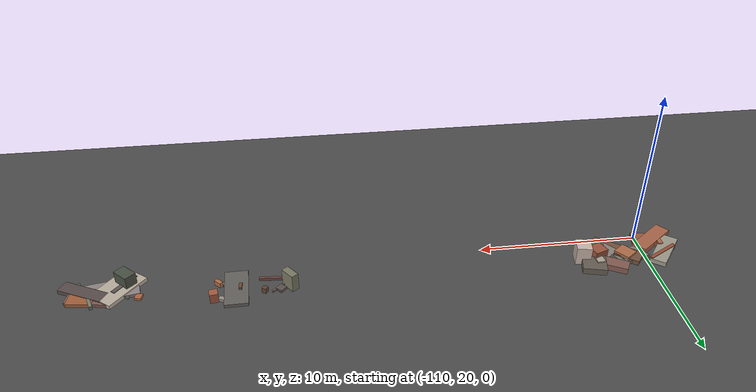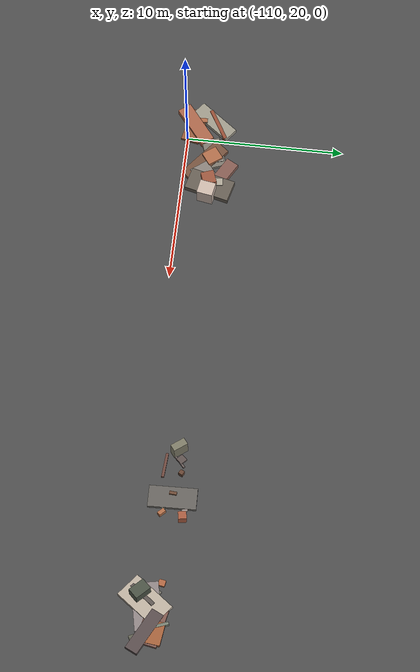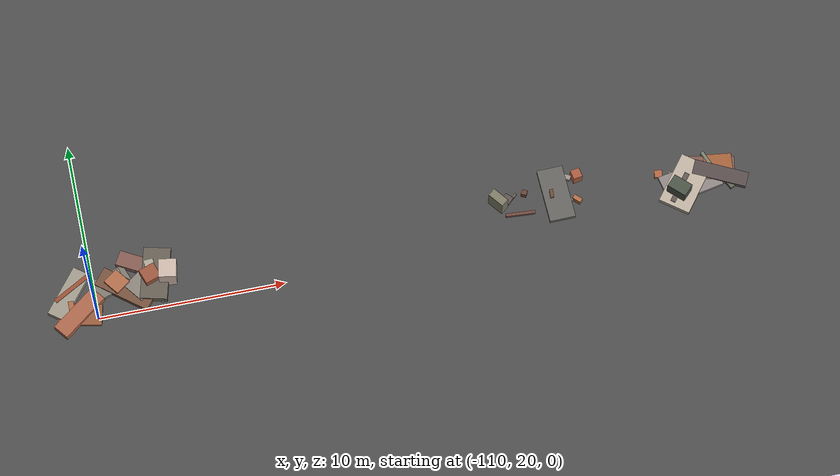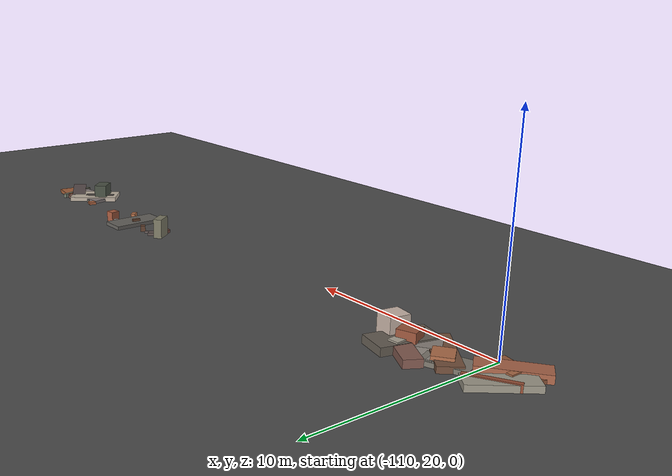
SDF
<sdf version="1.6">
 <world name="navitas_arena">
  <model name="ground_plane">
   <static>true</static>
   <link name="link">
    <collision name="collision">
     <geometry><plane><normal>0 0 1</normal><size>400 400</size></plane></geometry>
     <surface><friction><ode><mu>0.800</mu><mu2>0.800</mu2></ode></friction></surface>
    </collision>
    <visual name="visual">
     <cast_shadows>false</cast_shadows>
     <geometry><plane><normal>0 0 1</normal><size>400 400</size></plane></geometry>
     <material>
      <specular>0.04 0.04 0.04 1</specular>
      <script>
       <uri>file://media/materials/scripts/navitas_asphalt.material</uri>
       <name>Navitas/RealArenaAsphalt</name>
      </script>
     </material>
    </visual>
   </link>
  </model>
  <model name="deb_kolay_31">
   <static>true</static>
   <pose>-107.964 21.851 0.000 0 0 0</pose>
   <link name="link">
    <collision name="col_0">
     <pose>-1.073 -0.040 0.113 0.000 0.000 3.485</pose>
     <geometry><box><size>2.029 1.155 0.225</size></box></geometry>
    </collision>
    <visual name="vis_0">
     <pose>-1.073 -0.040 0.113 0.000 0.000 3.485</pose>
     <geometry><box><size>2.029 1.155 0.225</size></box></geometry>
     <material>
      <ambient>0.45 0.44 0.40 1</ambient>
      <diffuse>0.49 0.47 0.43 1</diffuse>
      <specular>0.05 0.05 0.045 1</specular>
     </material>
    </visual>
    <collision name="col_1">
     <pose>0.515 0.814 0.091 0.000 0.000 1.323</pose>
     <geometry><box><size>0.291 0.263 0.183</size></box></geometry>
    </collision>
    <visual name="vis_1">
     <pose>0.515 0.814 0.091 0.000 0.000 1.323</pose>
     <geometry><box><size>0.291 0.263 0.183</size></box></geometry>
     <material>
      <ambient>0.61 0.33 0.22 1</ambient>
      <diffuse>0.66 0.35 0.24 1</diffuse>
      <specular>0.05 0.05 0.045 1</specular>
     </material>
    </visual>
    <collision name="col_2">
     <pose>-0.374 -0.549 0.149 0.000 0.000 2.469</pose>
     <geometry><box><size>3.157 1.090 0.297</size></box></geometry>
    </collision>
    <visual name="vis_2">
     <pose>-0.374 -0.549 0.149 0.000 0.000 2.469</pose>
     <geometry><box><size>3.157 1.090 0.297</size></box></geometry>
     <material>
      <ambient>0.43 0.29 0.23 1</ambient>
      <diffuse>0.46 0.32 0.24 1</diffuse>
      <specular>0.05 0.05 0.045 1</specular>
     </material>
    </visual>
    <collision name="col_3">
     <pose>1.103 0.302 0.235 0.000 0.000 1.645</pose>
     <geometry><box><size>0.943 0.508 0.471</size></box></geometry>
    </collision>
    <visual name="vis_3">
     <pose>1.103 0.302 0.235 0.000 0.000 1.645</pose>
     <geometry><box><size>0.943 0.508 0.471</size></box></geometry>
     <material>
      <ambient>0.63 0.60 0.54 1</ambient>
      <diffuse>0.68 0.65 0.59 1</diffuse>
      <specular>0.05 0.05 0.045 1</specular>
     </material>
    </visual>
    <collision name="col_4">
     <pose>-0.762 -0.109 0.220 0.000 0.000 3.783</pose>
     <geometry><box><size>0.921 0.999 0.439</size></box></geometry>
    </collision>
    <visual name="vis_4">
     <pose>-0.762 -0.109 0.220 0.000 0.000 3.783</pose>
     <geometry><box><size>0.921 0.999 0.439</size></box></geometry>
     <material>
      <ambient>0.64 0.40 0.27 1</ambient>
      <diffuse>0.69 0.43 0.29 1</diffuse>
      <specular>0.05 0.05 0.045 1</specular>
     </material>
    </visual>
    <collision name="col_5">
     <pose>0.314 0.476 0.117 0.000 0.000 2.164</pose>
     <geometry><box><size>0.240 0.232 0.235</size></box></geometry>
    </collision>
    <visual name="vis_5">
     <pose>0.314 0.476 0.117 0.000 0.000 2.164</pose>
     <geometry><box><size>0.240 0.232 0.235</size></box></geometry>
     <material>
      <ambient>0.66 0.61 0.54 1</ambient>
      <diffuse>0.71 0.66 0.58 1</diffuse>
      <specular>0.05 0.05 0.045 1</specular>
     </material>
    </visual>
   </link>
  </model>
  <model name="deb_kolay_43">
   <static>true</static>
   <pose>-110.915 21.212 0.000 0 0 0</pose>
   <link name="link">
    <collision name="col_0">
     <pose>-0.381 -0.619 0.184 0.000 0.000 1.573</pose>
     <geometry><box><size>1.093 0.287 0.367</size></box></geometry>
    </collision>
    <visual name="vis_0">
     <pose>-0.381 -0.619 0.184 0.000 0.000 1.573</pose>
     <geometry><box><size>1.093 0.287 0.367</size></box></geometry>
     <material>
      <ambient>0.63 0.39 0.25 1</ambient>
      <diffuse>0.68 0.42 0.28 1</diffuse>
      <specular>0.05 0.05 0.045 1</specular>
     </material>
    </visual>
    <collision name="col_1">
     <pose>-0.191 0.652 0.173 0.000 0.000 0.520</pose>
     <geometry><box><size>2.224 0.226 0.346</size></box></geometry>
    </collision>
    <visual name="vis_1">
     <pose>-0.191 0.652 0.173 0.000 0.000 0.520</pose>
     <geometry><box><size>2.224 0.226 0.346</size></box></geometry>
     <material>
      <ambient>0.55 0.29 0.20 1</ambient>
      <diffuse>0.59 0.31 0.21 1</diffuse>
      <specular>0.05 0.05 0.045 1</specular>
     </material>
    </visual>
    <collision name="col_2">
     <pose>0.011 0.656 0.091 0.000 0.000 0.644</pose>
     <geometry><box><size>0.246 0.323 0.182</size></box></geometry>
    </collision>
    <visual name="vis_2">
     <pose>0.011 0.656 0.091 0.000 0.000 0.644</pose>
     <geometry><box><size>0.246 0.323 0.182</size></box></geometry>
     <material>
      <ambient>0.42 0.29 0.25 1</ambient>
      <diffuse>0.46 0.31 0.27 1</diffuse>
      <specular>0.05 0.05 0.045 1</specular>
     </material>
    </visual>
    <collision name="col_3">
     <pose>-0.000 -0.827 0.089 0.000 0.000 2.928</pose>
     <geometry><box><size>2.295 1.154 0.178</size></box></geometry>
    </collision>
    <visual name="vis_3">
     <pose>-0.000 -0.827 0.089 0.000 0.000 2.928</pose>
     <geometry><box><size>2.295 1.154 0.178</size></box></geometry>
     <material>
      <ambient>0.54 0.33 0.22 1</ambient>
      <diffuse>0.59 0.36 0.24 1</diffuse>
      <specular>0.05 0.05 0.045 1</specular>
     </material>
    </visual>
    <collision name="col_4">
     <pose>-0.405 0.395 0.150 0.000 0.000 0.913</pose>
     <geometry><box><size>2.885 0.967 0.299</size></box></geometry>
    </collision>
    <visual name="vis_4">
     <pose>-0.405 0.395 0.150 0.000 0.000 0.913</pose>
     <geometry><box><size>2.885 0.967 0.299</size></box></geometry>
     <material>
      <ambient>0.57 0.56 0.50 1</ambient>
      <diffuse>0.62 0.60 0.54 1</diffuse>
      <specular>0.05 0.05 0.045 1</specular>
     </material>
    </visual>
    <collision name="col_5">
     <pose>-0.030 -0.786 0.187 0.000 0.000 0.659</pose>
     <geometry><box><size>2.903 0.914 0.374</size></box></geometry>
    </collision>
    <visual name="vis_5">
     <pose>-0.030 -0.786 0.187 0.000 0.000 0.659</pose>
     <geometry><box><size>2.903 0.914 0.374</size></box></geometry>
     <material>
      <ambient>0.62 0.37 0.27 1</ambient>
      <diffuse>0.67 0.40 0.29 1</diffuse>
      <specular>0.05 0.05 0.045 1</specular>
     </material>
    </visual>
   </link>
  </model>
  <model name="deb_kolay_47">
   <static>true</static>
   <pose>-107.625 21.620 0.000 0 0 0</pose>
   <link name="link">
    <collision name="col_0">
     <pose>0.497 -0.866 0.107 0.000 0.000 0.260</pose>
     <geometry><box><size>1.045 0.248 0.213</size></box></geometry>
    </collision>
    <visual name="vis_0">
     <pose>0.497 -0.866 0.107 0.000 0.000 0.260</pose>
     <geometry><box><size>1.045 0.248 0.213</size></box></geometry>
     <material>
      <ambient>0.48 0.50 0.49 1</ambient>
      <diffuse>0.52 0.54 0.53 1</diffuse>
      <specular>0.05 0.05 0.045 1</specular>
     </material>
    </visual>
    <collision name="col_1">
     <pose>0.081 0.966 0.191 0.000 0.000 2.630</pose>
     <geometry><box><size>2.058 0.833 0.382</size></box></geometry>
    </collision>
    <visual name="vis_1">
     <pose>0.081 0.966 0.191 0.000 0.000 2.630</pose>
     <geometry><box><size>2.058 0.833 0.382</size></box></geometry>
     <material>
      <ambient>0.48 0.33 0.29 1</ambient>
      <diffuse>0.52 0.36 0.32 1</diffuse>
      <specular>0.05 0.05 0.045 1</specular>
     </material>
    </visual>
    <collision name="col_2">
     <pose>-0.725 -0.124 0.134 0.000 0.000 1.863</pose>
     <geometry><box><size>2.048 0.266 0.267</size></box></geometry>
    </collision>
    <visual name="vis_2">
     <pose>-0.725 -0.124 0.134 0.000 0.000 1.863</pose>
     <geometry><box><size>2.048 0.266 0.267</size></box></geometry>
     <material>
      <ambient>0.52 0.50 0.47 1</ambient>
      <diffuse>0.56 0.54 0.51 1</diffuse>
      <specular>0.05 0.05 0.045 1</specular>
     </material>
    </visual>
    <collision name="col_3">
     <pose>0.977 0.191 0.199 0.000 0.000 1.326</pose>
     <geometry><box><size>2.892 1.446 0.398</size></box></geometry>
    </collision>
    <visual name="vis_3">
     <pose>0.977 0.191 0.199 0.000 0.000 1.326</pose>
     <geometry><box><size>2.892 1.446 0.398</size></box></geometry>
     <material>
      <ambient>0.37 0.34 0.31 1</ambient>
      <diffuse>0.40 0.37 0.33 1</diffuse>
      <specular>0.05 0.05 0.045 1</specular>
     </material>
    </visual>
   </link>
  </model>
  <model name="deb_kolay_84">
   <static>true</static>
   <pose>-84.271 22.246 0.000 0 0 0</pose>
   <link name="link">
    <collision name="col_0">
     <pose>-0.614 -0.211 0.106 0.000 0.000 1.594</pose>
     <geometry><box><size>3.004 1.404 0.213</size></box></geometry>
    </collision>
    <visual name="vis_0">
     <pose>-0.614 -0.211 0.106 0.000 0.000 1.594</pose>
     <geometry><box><size>3.004 1.404 0.213</size></box></geometry>
     <material>
      <ambient>0.37 0.36 0.34 1</ambient>
      <diffuse>0.40 0.39 0.37 1</diffuse>
      <specular>0.05 0.05 0.045 1</specular>
     </material>
    </visual>
    <collision name="col_1">
     <pose>0.430 -0.762 0.158 0.000 0.000 0.792</pose>
     <geometry><box><size>0.253 0.477 0.315</size></box></geometry>
    </collision>
    <visual name="vis_1">
     <pose>0.430 -0.762 0.158 0.000 0.000 0.792</pose>
     <geometry><box><size>0.253 0.477 0.315</size></box></geometry>
     <material>
      <ambient>0.64 0.39 0.26 1</ambient>
      <diffuse>0.69 0.43 0.28 1</diffuse>
      <specular>0.05 0.05 0.045 1</specular>
     </material>
    </visual>
    <collision name="col_2">
     <pose>0.114 -0.693 0.089 0.000 0.000 1.922</pose>
     <geometry><box><size>0.186 0.173 0.178</size></box></geometry>
    </collision>
    <visual name="vis_2">
     <pose>0.114 -0.693 0.089 0.000 0.000 1.922</pose>
     <geometry><box><size>0.186 0.173 0.178</size></box></geometry>
     <material>
      <ambient>0.45 0.47 0.42 1</ambient>
      <diffuse>0.48 0.51 0.46 1</diffuse>
      <specular>0.05 0.05 0.045 1</specular>
     </material>
    </visual>
    <collision name="col_3">
     <pose>0.648 0.541 0.302 0.000 0.000 1.734</pose>
     <geometry><box><size>0.517 0.498 0.603</size></box></geometry>
    </collision>
    <visual name="vis_3">
     <pose>0.648 0.541 0.302 0.000 0.000 1.734</pose>
     <geometry><box><size>0.517 0.498 0.603</size></box></geometry>
     <material>
      <ambient>0.61 0.33 0.24 1</ambient>
      <diffuse>0.66 0.36 0.25 1</diffuse>
      <specular>0.05 0.05 0.045 1</specular>
     </material>
    </visual>
    <collision name="col_4">
     <pose>-0.486 -0.535 0.102 0.000 0.000 1.324</pose>
     <geometry><box><size>1.124 0.208 0.204</size></box></geometry>
    </collision>
    <visual name="vis_4">
     <pose>-0.486 -0.535 0.102 0.000 0.000 1.324</pose>
     <geometry><box><size>1.124 0.208 0.204</size></box></geometry>
     <material>
      <ambient>0.37 0.38 0.35 1</ambient>
      <diffuse>0.40 0.41 0.38 1</diffuse>
      <specular>0.05 0.05 0.045 1</specular>
     </material>
    </visual>
    <collision name="col_5">
     <pose>-0.863 -0.200 0.173 0.000 0.000 3.066</pose>
     <geometry><box><size>0.191 0.462 0.345</size></box></geometry>
    </collision>
    <visual name="vis_5">
     <pose>-0.863 -0.200 0.173 0.000 0.000 3.066</pose>
     <geometry><box><size>0.191 0.462 0.345</size></box></geometry>
     <material>
      <ambient>0.40 0.26 0.19 1</ambient>
      <diffuse>0.43 0.29 0.21 1</diffuse>
      <specular>0.05 0.05 0.045 1</specular>
     </material>
    </visual>
    <collision name="col_6">
     <pose>0.179 0.613 0.093 0.000 0.000 2.654</pose>
     <geometry><box><size>0.362 0.283 0.185</size></box></geometry>
    </collision>
    <visual name="vis_6">
     <pose>0.179 0.613 0.093 0.000 0.000 2.654</pose>
     <geometry><box><size>0.362 0.283 0.185</size></box></geometry>
     <material>
      <ambient>0.56 0.52 0.50 1</ambient>
      <diffuse>0.61 0.56 0.54 1</diffuse>
      <specular>0.05 0.05 0.045 1</specular>
     </material>
    </visual>
   </link>
  </model>
  <model name="deb_kolay_85">
   <static>true</static>
   <pose>-76.432 21.805 0.000 0 0 0</pose>
   <link name="link">
    <collision name="col_0">
     <pose>0.421 -0.411 0.128 0.000 0.000 2.674</pose>
     <geometry><box><size>2.945 0.835 0.257</size></box></geometry>
    </collision>
    <visual name="vis_0">
     <pose>0.421 -0.411 0.128 0.000 0.000 2.674</pose>
     <geometry><box><size>2.945 0.835 0.257</size></box></geometry>
     <material>
      <ambient>0.32 0.28 0.27 1</ambient>
      <diffuse>0.35 0.30 0.30 1</diffuse>
      <specular>0.05 0.05 0.045 1</specular>
     </material>
    </visual>
    <collision name="col_1">
     <pose>0.429 -0.315 0.083 0.000 0.000 2.017</pose>
     <geometry><box><size>2.182 0.266 0.166</size></box></geometry>
    </collision>
    <visual name="vis_1">
     <pose>0.429 -0.315 0.083 0.000 0.000 2.017</pose>
     <geometry><box><size>2.182 0.266 0.166</size></box></geometry>
     <material>
      <ambient>0.35 0.35 0.30 1</ambient>
      <diffuse>0.38 0.38 0.32 1</diffuse>
      <specular>0.05 0.05 0.045 1</specular>
     </material>
    </visual>
    <collision name="col_2">
     <pose>0.429 0.175 0.114 0.000 0.000 3.016</pose>
     <geometry><box><size>1.514 1.073 0.227</size></box></geometry>
    </collision>
    <visual name="vis_2">
     <pose>0.429 0.175 0.114 0.000 0.000 3.016</pose>
     <geometry><box><size>1.514 1.073 0.227</size></box></geometry>
     <material>
      <ambient>0.59 0.35 0.21 1</ambient>
      <diffuse>0.64 0.38 0.23 1</diffuse>
      <specular>0.05 0.05 0.045 1</specular>
     </material>
    </visual>
    <collision name="col_3">
     <pose>0.043 0.146 0.122 0.000 0.000 1.920</pose>
     <geometry><box><size>1.778 0.185 0.243</size></box></geometry>
    </collision>
    <visual name="vis_3">
     <pose>0.043 0.146 0.122 0.000 0.000 1.920</pose>
     <geometry><box><size>1.778 0.185 0.243</size></box></geometry>
     <material>
      <ambient>0.44 0.46 0.41 1</ambient>
      <diffuse>0.47 0.50 0.44 1</diffuse>
      <specular>0.05 0.05 0.045 1</specular>
     </material>
    </visual>
    <collision name="col_4">
     <pose>-0.110 0.039 0.100 0.000 0.000 2.943</pose>
     <geometry><box><size>2.770 1.322 0.200</size></box></geometry>
    </collision>
    <visual name="vis_4">
     <pose>-0.110 0.039 0.100 0.000 0.000 2.943</pose>
     <geometry><box><size>2.770 1.322 0.200</size></box></geometry>
     <material>
      <ambient>0.46 0.33 0.29 1</ambient>
      <diffuse>0.50 0.35 0.31 1</diffuse>
      <specular>0.05 0.05 0.045 1</specular>
     </material>
    </visual>
   </link>
  </model>
  <model name="deb_kolay_87">
   <static>true</static>
   <pose>-78.445 21.727 0.000 0 0 0</pose>
   <link name="link">
    <collision name="col_0">
     <pose>0.455 -0.543 0.127 0.000 0.000 0.909</pose>
     <geometry><box><size>2.976 1.723 0.255</size></box></geometry>
    </collision>
    <visual name="vis_0">
     <pose>0.455 -0.543 0.127 0.000 0.000 0.909</pose>
     <geometry><box><size>2.976 1.723 0.255</size></box></geometry>
     <material>
      <ambient>0.68 0.64 0.59 1</ambient>
      <diffuse>0.74 0.69 0.63 1</diffuse>
      <specular>0.05 0.05 0.045 1</specular>
     </material>
    </visual>
    <collision name="col_1">
     <pose>-0.823 0.336 0.076 0.000 0.000 1.386</pose>
     <geometry><box><size>0.424 0.406 0.152</size></box></geometry>
    </collision>
    <visual name="vis_1">
     <pose>-0.823 0.336 0.076 0.000 0.000 1.386</pose>
     <geometry><box><size>0.424 0.406 0.152</size></box></geometry>
     <material>
      <ambient>0.64 0.37 0.24 1</ambient>
      <diffuse>0.69 0.40 0.26 1</diffuse>
      <specular>0.05 0.05 0.045 1</specular>
     </material>
    </visual>
    <collision name="col_2">
     <pose>0.112 -0.728 0.150 0.000 0.000 0.903</pose>
     <geometry><box><size>1.830 0.269 0.299</size></box></geometry>
    </collision>
    <visual name="vis_2">
     <pose>0.112 -0.728 0.150 0.000 0.000 0.903</pose>
     <geometry><box><size>1.830 0.269 0.299</size></box></geometry>
     <material>
      <ambient>0.34 0.31 0.30 1</ambient>
      <diffuse>0.37 0.34 0.32 1</diffuse>
      <specular>0.05 0.05 0.045 1</specular>
     </material>
    </visual>
    <collision name="col_3">
     <pose>0.016 -0.891 0.499 0.000 0.000 -0.786</pose>
     <geometry><box><size>1.093 0.751 0.998</size></box></geometry>
    </collision>
    <visual name="vis_3">
     <pose>0.016 -0.891 0.499 0.000 0.000 -0.786</pose>
     <geometry><box><size>1.093 0.751 0.998</size></box></geometry>
     <material>
      <ambient>0.27 0.30 0.25 1</ambient>
      <diffuse>0.29 0.32 0.27 1</diffuse>
      <specular>0.05 0.05 0.045 1</specular>
     </material>
    </visual>
    <collision name="col_4">
     <pose>0.387 -0.123 0.067 0.000 0.000 -0.620</pose>
     <geometry><box><size>1.602 0.142 0.135</size></box></geometry>
    </collision>
    <visual name="vis_4">
     <pose>0.387 -0.123 0.067 0.000 0.000 -0.620</pose>
     <geometry><box><size>1.602 0.142 0.135</size></box></geometry>
     <material>
      <ambient>0.45 0.44 0.40 1</ambient>
      <diffuse>0.48 0.47 0.43 1</diffuse>
      <specular>0.05 0.05 0.045 1</specular>
     </material>
    </visual>
    <collision name="col_5">
     <pose>0.787 -0.412 0.089 0.000 0.000 0.193</pose>
     <geometry><box><size>3.087 1.670 0.178</size></box></geometry>
    </collision>
    <visual name="vis_5">
     <pose>0.787 -0.412 0.089 0.000 0.000 0.193</pose>
     <geometry><box><size>3.087 1.670 0.178</size></box></geometry>
     <material>
      <ambient>0.52 0.48 0.48 1</ambient>
      <diffuse>0.56 0.52 0.52 1</diffuse>
      <specular>0.05 0.05 0.045 1</specular>
     </material>
    </visual>
   </link>
  </model>
  <model name="deb_kolay_96">
   <static>true</static>
   <pose>-106.645 21.496 0.000 0 0 0</pose>
   <link name="link">
    <collision name="col_0">
     <pose>-0.568 0.038 0.164 0.000 0.000 0.643</pose>
     <geometry><box><size>1.975 1.263 0.328</size></box></geometry>
    </collision>
    <visual name="vis_0">
     <pose>-0.568 0.038 0.164 0.000 0.000 0.643</pose>
     <geometry><box><size>1.975 1.263 0.328</size></box></geometry>
     <material>
      <ambient>0.50 0.47 0.45 1</ambient>
      <diffuse>0.54 0.51 0.48 1</diffuse>
      <specular>0.05 0.05 0.045 1</specular>
     </material>
    </visual>
    <collision name="col_1">
     <pose>0.095 0.614 0.098 0.000 0.000 1.733</pose>
     <geometry><box><size>1.238 0.280 0.196</size></box></geometry>
    </collision>
    <visual name="vis_1">
     <pose>0.095 0.614 0.098 0.000 0.000 1.733</pose>
     <geometry><box><size>1.238 0.280 0.196</size></box></geometry>
     <material>
      <ambient>0.44 0.47 0.40 1</ambient>
      <diffuse>0.48 0.50 0.43 1</diffuse>
      <specular>0.05 0.05 0.045 1</specular>
     </material>
    </visual>
    <collision name="col_2">
     <pose>0.660 0.173 0.576 0.000 0.000 1.399</pose>
     <geometry><box><size>1.012 0.928 1.153</size></box></geometry>
    </collision>
    <visual name="vis_2">
     <pose>0.660 0.173 0.576 0.000 0.000 1.399</pose>
     <geometry><box><size>1.012 0.928 1.153</size></box></geometry>
     <material>
      <ambient>0.74 0.67 0.62 1</ambient>
      <diffuse>0.80 0.72 0.67 1</diffuse>
      <specular>0.05 0.05 0.045 1</specular>
     </material>
    </visual>
    <collision name="col_3">
     <pose>-0.288 0.209 0.405 0.000 0.000 1.915</pose>
     <geometry><box><size>0.844 0.879 0.810</size></box></geometry>
    </collision>
    <visual name="vis_3">
     <pose>-0.288 0.209 0.405 0.000 0.000 1.915</pose>
     <geometry><box><size>0.844 0.879 0.810</size></box></geometry>
     <material>
      <ambient>0.57 0.31 0.22 1</ambient>
      <diffuse>0.61 0.34 0.24 1</diffuse>
      <specular>0.05 0.05 0.045 1</specular>
     </material>
    </visual>
    <collision name="col_4">
     <pose>-0.608 0.035 0.138 0.000 0.000 1.511</pose>
     <geometry><box><size>0.503 0.465 0.275</size></box></geometry>
    </collision>
    <visual name="vis_4">
     <pose>-0.608 0.035 0.138 0.000 0.000 1.511</pose>
     <geometry><box><size>0.503 0.465 0.275</size></box></geometry>
     <material>
      <ambient>0.61 0.32 0.26 1</ambient>
      <diffuse>0.66 0.35 0.28 1</diffuse>
      <specular>0.05 0.05 0.045 1</specular>
     </material>
    </visual>
    <collision name="col_5">
     <pose>0.316 -0.379 0.137 0.000 0.000 1.349</pose>
     <geometry><box><size>1.774 0.124 0.273</size></box></geometry>
    </collision>
    <visual name="vis_5">
     <pose>0.316 -0.379 0.137 0.000 0.000 1.349</pose>
     <geometry><box><size>1.774 0.124 0.273</size></box></geometry>
     <material>
      <ambient>0.48 0.48 0.46 1</ambient>
      <diffuse>0.52 0.52 0.49 1</diffuse>
      <specular>0.05 0.05 0.045 1</specular>
     </material>
    </visual>
   </link>
  </model>
  <model name="deb_kolay_190">
   <static>true</static>
   <pose>-87.136 22.051 0.000 0 0 0</pose>
   <link name="link">
    <collision name="col_0">
     <pose>-0.328 0.021 0.062 0.000 0.000 0.728</pose>
     <geometry><box><size>1.274 0.125 0.124</size></box></geometry>
    </collision>
    <visual name="vis_0">
     <pose>-0.328 0.021 0.062 0.000 0.000 0.728</pose>
     <geometry><box><size>1.274 0.125 0.124</size></box></geometry>
     <material>
      <ambient>0.39 0.34 0.33 1</ambient>
      <diffuse>0.42 0.37 0.36 1</diffuse>
      <specular>0.05 0.05 0.045 1</specular>
     </material>
    </visual>
    <collision name="col_1">
     <pose>0.137 -0.739 0.086 0.000 0.000 3.072</pose>
     <geometry><box><size>1.583 0.168 0.173</size></box></geometry>
    </collision>
    <visual name="vis_1">
     <pose>0.137 -0.739 0.086 0.000 0.000 3.072</pose>
     <geometry><box><size>1.583 0.168 0.173</size></box></geometry>
     <material>
      <ambient>0.40 0.26 0.22 1</ambient>
      <diffuse>0.43 0.28 0.24 1</diffuse>
      <specular>0.05 0.05 0.045 1</specular>
     </material>
    </visual>
    <collision name="col_2">
     <pose>-0.925 0.025 0.546 0.000 0.000 0.646</pose>
     <geometry><box><size>0.466 0.960 1.092</size></box></geometry>
    </collision>
    <visual name="vis_2">
     <pose>-0.925 0.025 0.546 0.000 0.000 0.646</pose>
     <geometry><box><size>0.466 0.960 1.092</size></box></geometry>
     <material>
      <ambient>0.45 0.44 0.37 1</ambient>
      <diffuse>0.49 0.48 0.40 1</diffuse>
      <specular>0.05 0.05 0.045 1</specular>
     </material>
    </visual>
    <collision name="col_3">
     <pose>0.580 0.340 0.168 0.000 0.000 2.645</pose>
     <geometry><box><size>0.293 0.278 0.336</size></box></geometry>
    </collision>
    <visual name="vis_3">
     <pose>0.580 0.340 0.168 0.000 0.000 2.645</pose>
     <geometry><box><size>0.293 0.278 0.336</size></box></geometry>
     <material>
      <ambient>0.37 0.25 0.18 1</ambient>
      <diffuse>0.40 0.27 0.20 1</diffuse>
      <specular>0.05 0.05 0.045 1</specular>
     </material>
    </visual>
    <collision name="col_4">
     <pose>-0.361 0.232 0.076 0.000 0.000 2.381</pose>
     <geometry><box><size>0.480 0.470 0.152</size></box></geometry>
    </collision>
    <visual name="vis_4">
     <pose>-0.361 0.232 0.076 0.000 0.000 2.381</pose>
     <geometry><box><size>0.480 0.470 0.152</size></box></geometry>
     <material>
      <ambient>0.34 0.30 0.29 1</ambient>
      <diffuse>0.37 0.32 0.31 1</diffuse>
      <specular>0.05 0.05 0.045 1</specular>
     </material>
    </visual>
   </link>
  </model>
 </world>
</sdf>
